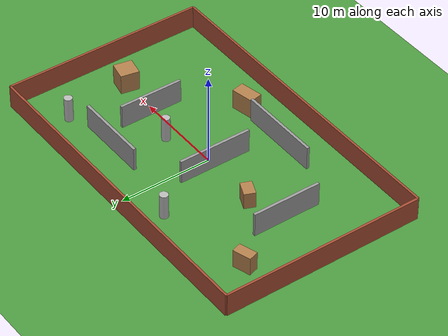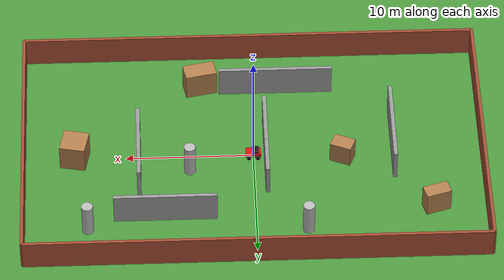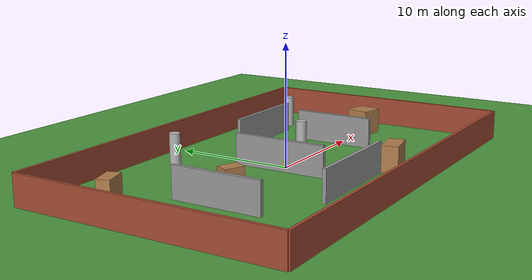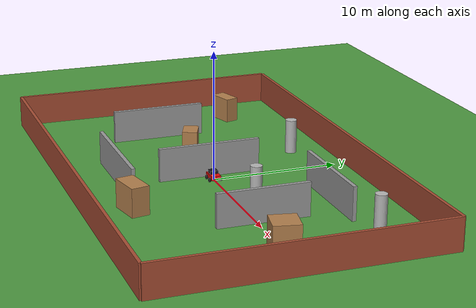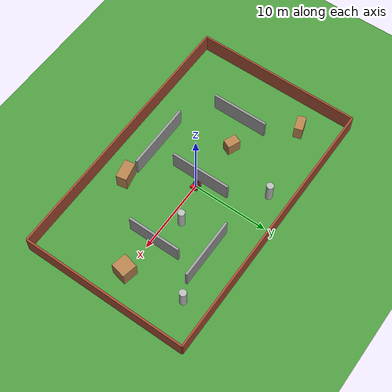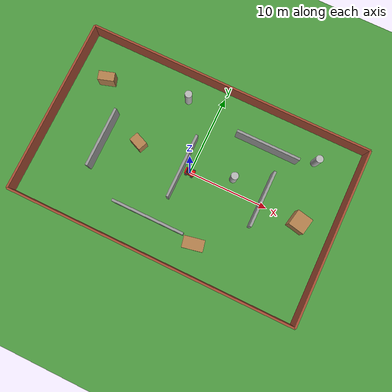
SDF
<sdf version='1.7'>
  <world name='default'>
    <light name='sun' type='directional'>
      <cast_shadows>1</cast_shadows>
      <pose>0 0 12 0 -0 0</pose>
      <diffuse>0.8 0.8 0.8 1</diffuse>
      <specular>0.2 0.2 0.2 1</specular>
      <attenuation>
        <range>1000</range>
        <constant>0.9</constant>
        <linear>0.01</linear>
        <quadratic>0.001</quadratic>
      </attenuation>
      <direction>-0.5 0.1 -0.9</direction>
    </light>

    <model name='ground_plane'>
      <static>1</static>
      <link name='link'>
        <collision name='collision'>
          <geometry>
            <plane>
              <normal>0 0 1</normal>
              <size>80 60</size>
            </plane>
          </geometry>
        </collision>
        <visual name='visual'>
          <cast_shadows>0</cast_shadows>
          <geometry>
            <plane>
              <normal>0 0 1</normal>
              <size>80 60</size>
            </plane>
          </geometry>
          <material>
            <script>
              <uri>file://media/materials/scripts/gazebo.material</uri>
              <name>Gazebo/Grass</name>
            </script>
          </material>
        </visual>
      </link>
    </model>

    <model name='target_car_1.2_0.8_0.5'>
      <pose>0 0 0 0 0 0</pose>
      <link name='base_link'>
        <collision name='car_collision'>
          <pose>0 0 0.25 0 0 0</pose>
          <geometry>
            <box>
              <size>1.2 0.8 0.5</size>
            </box>
          </geometry>
        </collision>
        <visual name='body'>
          <pose>0 0 0.32 0 0 0</pose>
          <geometry>
            <box>
              <size>1.2 0.75 0.35</size>
            </box>
          </geometry>
          <material>
            <ambient>0.9 0.05 0.04 1</ambient>
            <diffuse>0.9 0.05 0.04 1</diffuse>
          </material>
        </visual>
        <visual name='cabin'>
          <pose>-0.15 0 0.6 0 0 0</pose>
          <geometry>
            <box>
              <size>0.55 0.62 0.28</size>
            </box>
          </geometry>
          <material>
            <ambient>0.1 0.1 0.12 1</ambient>
            <diffuse>0.1 0.1 0.12 1</diffuse>
          </material>
        </visual>
        <visual name='front_left_wheel'>
          <pose>0.35 0.45 0.16 1.5708 0 0</pose>
          <geometry>
            <cylinder>
              <radius>0.16</radius>
              <length>0.12</length>
            </cylinder>
          </geometry>
          <material>
            <ambient>0.02 0.02 0.02 1</ambient>
            <diffuse>0.02 0.02 0.02 1</diffuse>
          </material>
        </visual>
        <visual name='front_right_wheel'>
          <pose>0.35 -0.45 0.16 1.5708 0 0</pose>
          <geometry>
            <cylinder>
              <radius>0.16</radius>
              <length>0.12</length>
            </cylinder>
          </geometry>
          <material>
            <ambient>0.02 0.02 0.02 1</ambient>
            <diffuse>0.02 0.02 0.02 1</diffuse>
          </material>
        </visual>
        <visual name='rear_left_wheel'>
          <pose>-0.35 0.45 0.16 1.5708 0 0</pose>
          <geometry>
            <cylinder>
              <radius>0.16</radius>
              <length>0.12</length>
            </cylinder>
          </geometry>
          <material>
            <ambient>0.02 0.02 0.02 1</ambient>
            <diffuse>0.02 0.02 0.02 1</diffuse>
          </material>
        </visual>
        <visual name='rear_right_wheel'>
          <pose>-0.35 -0.45 0.16 1.5708 0 0</pose>
          <geometry>
            <cylinder>
              <radius>0.16</radius>
              <length>0.12</length>
            </cylinder>
          </geometry>
          <material>
            <ambient>0.02 0.02 0.02 1</ambient>
            <diffuse>0.02 0.02 0.02 1</diffuse>
          </material>
        </visual>
      </link>
      <plugin name='car_motion' filename='libobstaclePathPlugin.so'>
        <loop>1</loop>
        <velocity>0.65</velocity>
        <angular_velocity>0.8</angular_velocity>
        <path>
          <waypoint>-12 -4 0.05</waypoint>
          <waypoint>-6 -4 0.05</waypoint>
          <waypoint>-6 4 0.05</waypoint>
          <waypoint>2 4 0.05</waypoint>
          <waypoint>2 -3 0.05</waypoint>
          <waypoint>10 -3 0.05</waypoint>
          <waypoint>12 4 0.05</waypoint>
        </path>
      </plugin>
    </model>

    <model name='static_wall_south'>
      <static>1</static>
      <pose>0 -11 0 0 0 0</pose>
      <link name='link'>
        <collision name='collision'><pose>0 0 1.25 0 0 0</pose><geometry><box><size>36 0.25 2.5</size></box></geometry></collision>
        <visual name='visual'><pose>0 0 1.25 0 0 0</pose><geometry><box><size>36 0.25 2.5</size></box></geometry><material><script><uri>file://media/materials/scripts/gazebo.material</uri><name>Gazebo/Bricks</name></script></material></visual>
      </link>
    </model>
    <model name='static_wall_north'>
      <static>1</static>
      <pose>0 11 0 0 0 0</pose>
      <link name='link'>
        <collision name='collision'><pose>0 0 1.25 0 0 0</pose><geometry><box><size>36 0.25 2.5</size></box></geometry></collision>
        <visual name='visual'><pose>0 0 1.25 0 0 0</pose><geometry><box><size>36 0.25 2.5</size></box></geometry><material><script><uri>file://media/materials/scripts/gazebo.material</uri><name>Gazebo/Bricks</name></script></material></visual>
      </link>
    </model>
    <model name='static_wall_west'>
      <static>1</static>
      <pose>-18 0 0 0 0 0</pose>
      <link name='link'>
        <collision name='collision'><pose>0 0 1.25 0 0 0</pose><geometry><box><size>0.25 22 2.5</size></box></geometry></collision>
        <visual name='visual'><pose>0 0 1.25 0 0 0</pose><geometry><box><size>0.25 22 2.5</size></box></geometry><material><script><uri>file://media/materials/scripts/gazebo.material</uri><name>Gazebo/Bricks</name></script></material></visual>
      </link>
    </model>
    <model name='static_wall_east'>
      <static>1</static>
      <pose>18 0 0 0 0 0</pose>
      <link name='link'>
        <collision name='collision'><pose>0 0 1.25 0 0 0</pose><geometry><box><size>0.25 22 2.5</size></box></geometry></collision>
        <visual name='visual'><pose>0 0 1.25 0 0 0</pose><geometry><box><size>0.25 22 2.5</size></box></geometry><material><script><uri>file://media/materials/scripts/gazebo.material</uri><name>Gazebo/Bricks</name></script></material></visual>
      </link>
    </model>

    <model name='static_maze_wall_1'>
      <static>1</static>
      <pose>-11 -1 0 0 0 0</pose>
      <link name='link'>
        <collision name='collision'><pose>0 0 1.3 0 0 0</pose><geometry><box><size>0.3 7.5 2.6</size></box></geometry></collision>
        <visual name='visual'><pose>0 0 1.3 0 0 0</pose><geometry><box><size>0.3 7.5 2.6</size></box></geometry><material><script><uri>file://media/materials/scripts/gazebo.material</uri><name>Gazebo/Grey</name></script></material></visual>
      </link>
    </model>
    <model name='static_maze_wall_2'>
      <static>1</static>
      <pose>-2 -7 0 0 0 0</pose>
      <link name='link'>
        <collision name='collision'><pose>0 0 1.3 0 0 0</pose><geometry><box><size>9 0.3 2.6</size></box></geometry></collision>
        <visual name='visual'><pose>0 0 1.3 0 0 0</pose><geometry><box><size>9 0.3 2.6</size></box></geometry><material><script><uri>file://media/materials/scripts/gazebo.material</uri><name>Gazebo/Grey</name></script></material></visual>
      </link>
    </model>
    <model name='static_maze_wall_3'>
      <static>1</static>
      <pose>-1 0 0 0 0 0</pose>
      <link name='link'>
        <collision name='collision'><pose>0 0 1.3 0 0 0</pose><geometry><box><size>0.3 8 2.6</size></box></geometry></collision>
        <visual name='visual'><pose>0 0 1.3 0 0 0</pose><geometry><box><size>0.3 8 2.6</size></box></geometry><material><script><uri>file://media/materials/scripts/gazebo.material</uri><name>Gazebo/Grey</name></script></material></visual>
      </link>
    </model>
    <model name='static_maze_wall_4'>
      <static>1</static>
      <pose>7 6.5 0 0 0 0</pose>
      <link name='link'>
        <collision name='collision'><pose>0 0 1.3 0 0 0</pose><geometry><box><size>8 0.3 2.6</size></box></geometry></collision>
        <visual name='visual'><pose>0 0 1.3 0 0 0</pose><geometry><box><size>8 0.3 2.6</size></box></geometry><material><script><uri>file://media/materials/scripts/gazebo.material</uri><name>Gazebo/Grey</name></script></material></visual>
      </link>
    </model>
    <model name='static_maze_wall_5'>
      <static>1</static>
      <pose>9 0.5 0 0 0 0</pose>
      <link name='link'>
        <collision name='collision'><pose>0 0 1.3 0 0 0</pose><geometry><box><size>0.3 7 2.6</size></box></geometry></collision>
        <visual name='visual'><pose>0 0 1.3 0 0 0</pose><geometry><box><size>0.3 7 2.6</size></box></geometry><material><script><uri>file://media/materials/scripts/gazebo.material</uri><name>Gazebo/Grey</name></script></material></visual>
      </link>
    </model>

    <model name='static_block_1'>
      <static>1</static>
      <pose>-14 6 0 0 0 0.3</pose>
      <link name='link'>
        <collision name='collision'><pose>0 0 1 0 0 0</pose><geometry><box><size>2.0 1.1 2.0</size></box></geometry></collision>
        <visual name='visual'><pose>0 0 1 0 0 0</pose><geometry><box><size>2.0 1.1 2.0</size></box></geometry><material><script><uri>file://media/materials/scripts/gazebo.material</uri><name>Gazebo/WoodPallet</name></script></material></visual>
      </link>
    </model>
    <model name='static_block_2'>
      <static>1</static>
      <pose>-7 0.5 0 0 0 -0.4</pose>
      <link name='link'>
        <collision name='collision'><pose>0 0 0.9 0 0 0</pose><geometry><box><size>1.7 1.2 1.8</size></box></geometry></collision>
        <visual name='visual'><pose>0 0 0.9 0 0 0</pose><geometry><box><size>1.7 1.2 1.8</size></box></geometry><material><script><uri>file://media/materials/scripts/gazebo.material</uri><name>Gazebo/WoodPallet</name></script></material></visual>
      </link>
    </model>
    <model name='static_block_3'>
      <static>1</static>
      <pose>4 -7.5 0 0 0 0.2</pose>
      <link name='link'>
        <collision name='collision'><pose>0 0 1.1 0 0 0</pose><geometry><box><size>2.5 1.4 2.2</size></box></geometry></collision>
        <visual name='visual'><pose>0 0 1.1 0 0 0</pose><geometry><box><size>2.5 1.4 2.2</size></box></geometry><material><script><uri>file://media/materials/scripts/gazebo.material</uri><name>Gazebo/WoodPallet</name></script></material></visual>
      </link>
    </model>
    <model name='static_block_4'>
      <static>1</static>
      <pose>14 0 0 0 0 -0.2</pose>
      <link name='link'>
        <collision name='collision'><pose>0 0 1.1 0 0 0</pose><geometry><box><size>2.0 2.0 2.2</size></box></geometry></collision>
        <visual name='visual'><pose>0 0 1.1 0 0 0</pose><geometry><box><size>2.0 2.0 2.2</size></box></geometry><material><script><uri>file://media/materials/scripts/gazebo.material</uri><name>Gazebo/WoodPallet</name></script></material></visual>
      </link>
    </model>

    <model name='static_pillar_1'>
      <static>1</static>
      <pose>-4 8 0 0 0 0</pose>
      <link name='link'>
        <collision name='collision'><pose>0 0 1.35 0 0 0</pose><geometry><cylinder><radius>0.45</radius><length>2.7</length></cylinder></geometry></collision>
        <visual name='visual'><pose>0 0 1.35 0 0 0</pose><geometry><cylinder><radius>0.45</radius><length>2.7</length></cylinder></geometry><material><script><uri>file://media/materials/scripts/gazebo.material</uri><name>Gazebo/Concrete</name></script></material></visual>
      </link>
    </model>
    <model name='static_pillar_2'>
      <static>1</static>
      <pose>5 1.5 0 0 0 0</pose>
      <link name='link'>
        <collision name='collision'><pose>0 0 1.35 0 0 0</pose><geometry><cylinder><radius>0.45</radius><length>2.7</length></cylinder></geometry></collision>
        <visual name='visual'><pose>0 0 1.35 0 0 0</pose><geometry><cylinder><radius>0.45</radius><length>2.7</length></cylinder></geometry><material><script><uri>file://media/materials/scripts/gazebo.material</uri><name>Gazebo/Concrete</name></script></material></visual>
      </link>
    </model>
    <model name='static_pillar_3'>
      <static>1</static>
      <pose>13 7.5 0 0 0 0</pose>
      <link name='link'>
        <collision name='collision'><pose>0 0 1.35 0 0 0</pose><geometry><cylinder><radius>0.45</radius><length>2.7</length></cylinder></geometry></collision>
        <visual name='visual'><pose>0 0 1.35 0 0 0</pose><geometry><cylinder><radius>0.45</radius><length>2.7</length></cylinder></geometry><material><script><uri>file://media/materials/scripts/gazebo.material</uri><name>Gazebo/Concrete</name></script></material></visual>
      </link>
    </model>

    <gravity>0 0 -9.8</gravity>
    <magnetic_field>6e-06 2.3e-05 -4.2e-05</magnetic_field>
    <atmosphere type='adiabatic'/>
    <physics type='ode'>
      <max_step_size>0.001</max_step_size>
      <real_time_factor>1</real_time_factor>
      <real_time_update_rate>1000</real_time_update_rate>
    </physics>
    <scene>
      <ambient>0.4 0.4 0.4 1</ambient>
      <background>0.7 0.7 0.7 1</background>
      <shadows>1</shadows>
    </scene>
    <wind/>
    <spherical_coordinates>
      <surface_model>EARTH_WGS84</surface_model>
      <latitude_deg>0</latitude_deg>
      <longitude_deg>0</longitude_deg>
      <elevation>0</elevation>
      <heading_deg>0</heading_deg>
    </spherical_coordinates>
  </world>
</sdf>
